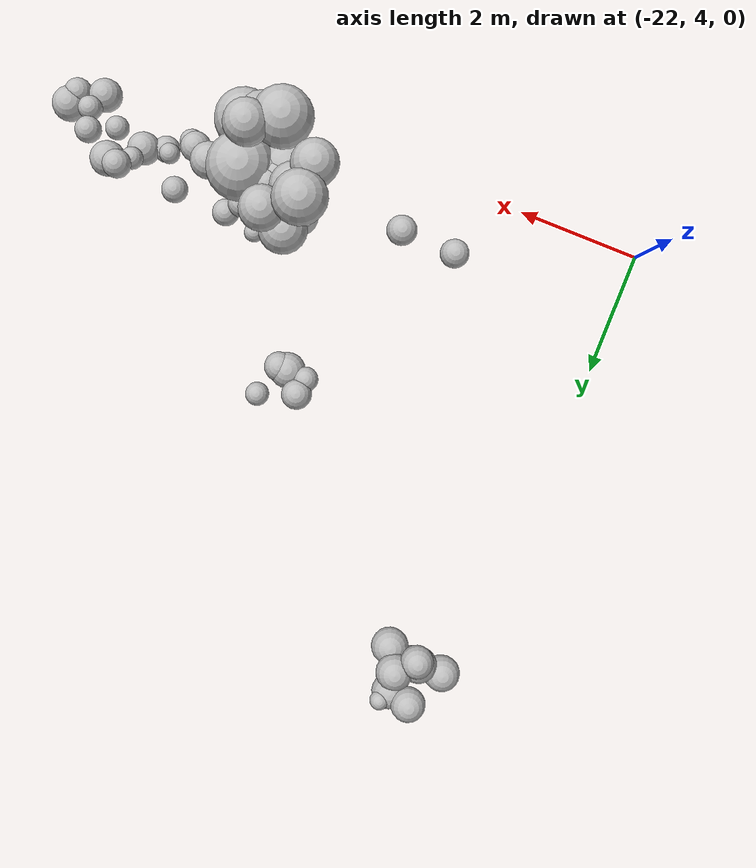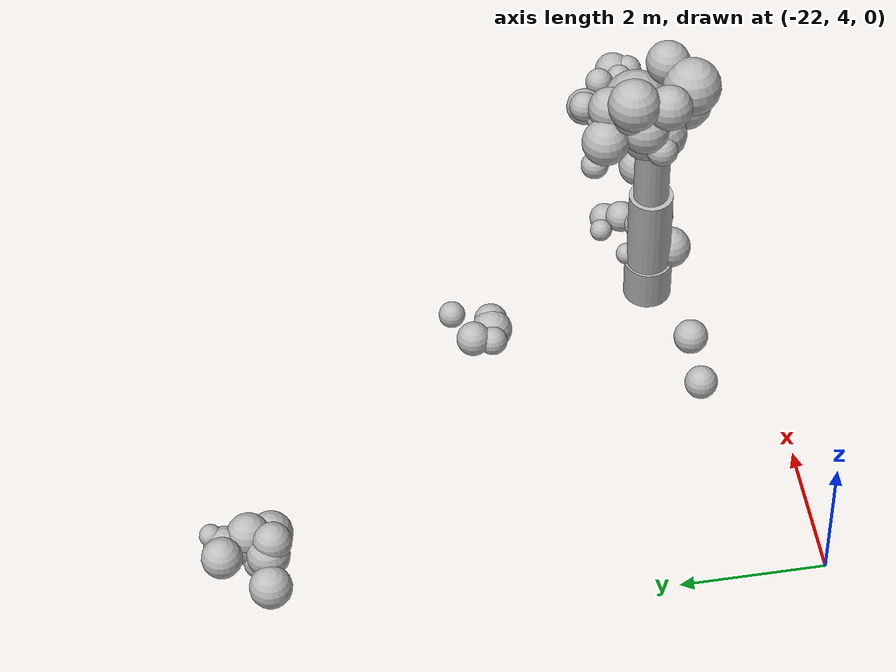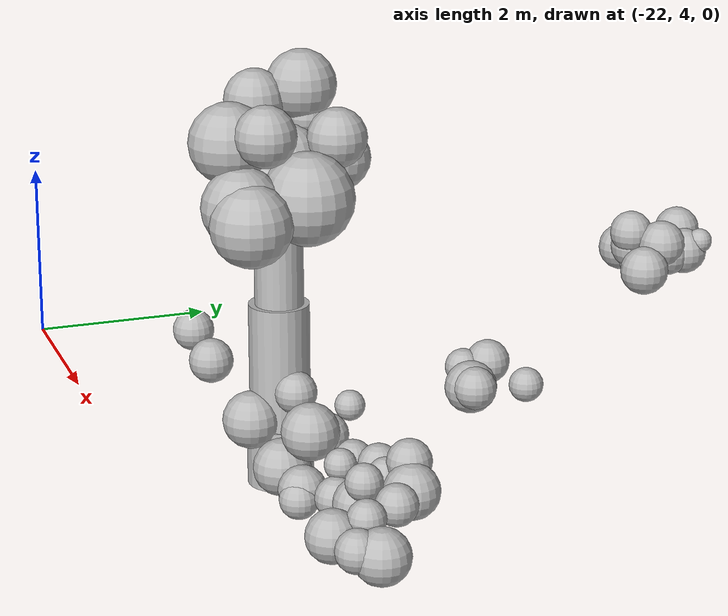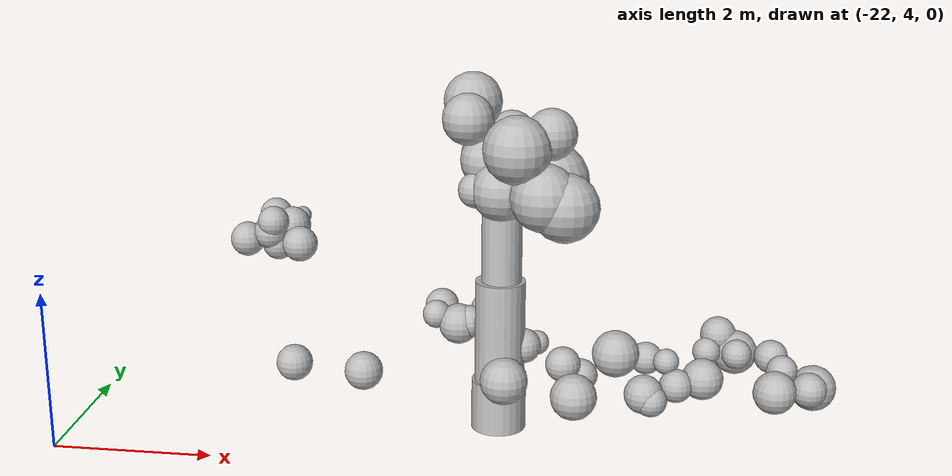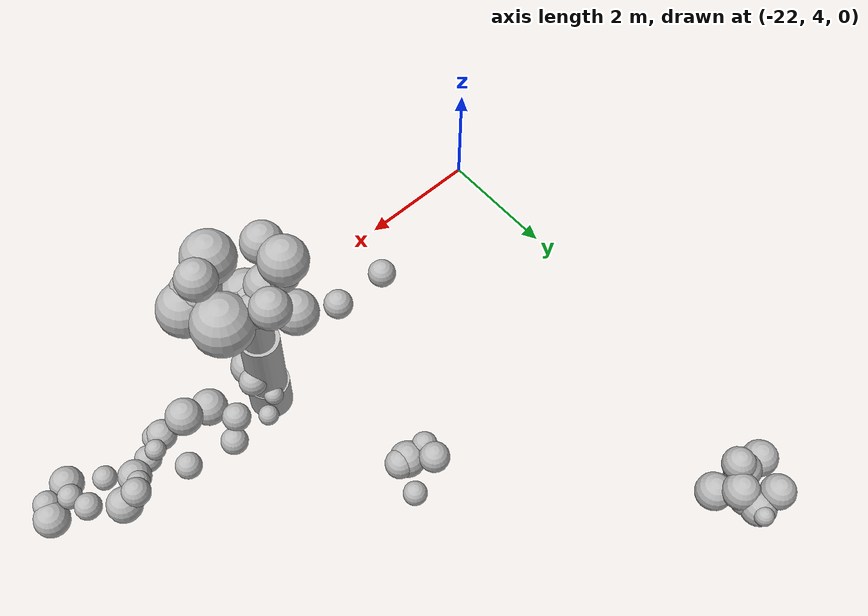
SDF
<sdf version="1.6">
 <world name="default">
  <model name="bush_27">
   <static>true</static>
   <pose>-16.6134 5.4047 0 0 0 0</pose>
   <link name="trunk">
    <pose>0 0 1.5000 0 0 0</pose>
    <collision name="trunk_c">
     <geometry><cylinder><radius>0.3500</radius><length>3.0000</length></cylinder></geometry>
    </collision>
   </link>
   <link name="trunk_v0">
    <pose>0.0010 0.0001 0.3100 0 0 0</pose>
    <visual name="trunk_v0_v">
     <geometry><cylinder><radius>0.3448</radius><length>0.6448</length></cylinder></geometry>
     <material>
      <script>
       <uri>model://bushfire/materials/scripts</uri>
       <uri>model://bushfire/materials/textures</uri>
       <name>Bushfire/CharBark</name>
      </script>
     </material>
    </visual>
   </link>
   <link name="trunk_v1">
    <pose>0.0076 0.0010 1.2700 0 0 0</pose>
    <visual name="trunk_v1_v">
     <geometry><cylinder><radius>0.3150</radius><length>1.3520</length></cylinder></geometry>
     <material>
      <script>
       <uri>model://bushfire/materials/scripts</uri>
       <uri>model://bushfire/materials/textures</uri>
       <name>Bushfire/BarkSmooth</name>
      </script>
     </material>
    </visual>
   </link>
   <link name="trunk_v2">
    <pose>0.0191 0.0025 2.4600 0 0 0</pose>
    <visual name="trunk_v2_v">
     <geometry><cylinder><radius>0.2520</radius><length>1.1232</length></cylinder></geometry>
     <material>
      <script>
       <uri>model://bushfire/materials/scripts</uri>
       <uri>model://bushfire/materials/textures</uri>
       <name>Bushfire/BarkSmooth</name>
      </script>
     </material>
    </visual>
   </link>
   <link name="branch0">
    <pose>0.2997 -0.1736 2.9202 0 1.0061 5.7580</pose>
    <visual name="branch0_v">
     <geometry><cylinder><radius>0.0526</radius><length>0.8201</length></cylinder></geometry>
     <material>
      <script>
       <uri>model://bushfire/materials/scripts</uri>
       <uri>model://bushfire/materials/textures</uri>
       <name>Bushfire/BarkSmooth</name>
      </script>
     </material>
    </visual>
   </link>
   <link name="branch1">
    <pose>-0.0403 0.2924 2.8859 0 0.7492 7.9910</pose>
    <visual name="branch1_v">
     <geometry><cylinder><radius>0.0457</radius><length>0.8670</length></cylinder></geometry>
     <material>
      <script>
       <uri>model://bushfire/materials/scripts</uri>
       <uri>model://bushfire/materials/textures</uri>
       <name>Bushfire/BarkSmooth</name>
      </script>
     </material>
    </visual>
   </link>
   <link name="branch2">
    <pose>-0.1545 -0.0808 2.9301 0 0.6088 9.9064</pose>
    <visual name="branch2_v">
     <geometry><cylinder><radius>0.0494</radius><length>0.6097</length></cylinder></geometry>
     <material>
      <script>
       <uri>model://bushfire/materials/scripts</uri>
       <uri>model://bushfire/materials/textures</uri>
       <name>Bushfire/BarkSmooth</name>
      </script>
     </material>
    </visual>
   </link>
   <link name="foliage0">
    <pose>0.2344 -0.5534 3.7459 0 0 0</pose>
    <visual name="foliage0_v">
     <geometry><sphere><radius>0.4104</radius></sphere></geometry>
     <material>
      <script>
       <uri>model://bushfire/materials/scripts</uri>
       <uri>model://bushfire/materials/textures</uri>
       <name>Bushfire/Foliage1</name>
      </script>
     </material>
    </visual>
   </link>
   <link name="foliage1">
    <pose>-0.3922 0.3838 4.1151 0 0 0</pose>
    <visual name="foliage1_v">
     <geometry><sphere><radius>0.3647</radius></sphere></geometry>
     <material>
      <script>
       <uri>model://bushfire/materials/scripts</uri>
       <uri>model://bushfire/materials/textures</uri>
       <name>Bushfire/Foliage1</name>
      </script>
     </material>
    </visual>
   </link>
   <link name="foliage2">
    <pose>0.1636 0.2439 3.3120 0 0 0</pose>
    <visual name="foliage2_v">
     <geometry><sphere><radius>0.2139</radius></sphere></geometry>
     <material>
      <script>
       <uri>model://bushfire/materials/scripts</uri>
       <uri>model://bushfire/materials/textures</uri>
       <name>Bushfire/Foliage0</name>
      </script>
     </material>
    </visual>
   </link>
   <link name="foliage3">
    <pose>0.5948 0.1442 3.2076 0 0 0</pose>
    <visual name="foliage3_v">
     <geometry><sphere><radius>0.4738</radius></sphere></geometry>
     <material>
      <script>
       <uri>model://bushfire/materials/scripts</uri>
       <uri>model://bushfire/materials/textures</uri>
       <name>Bushfire/Foliage2</name>
      </script>
     </material>
    </visual>
   </link>
   <link name="foliage4">
    <pose>-0.3012 -0.0554 3.1097 0 0 0</pose>
    <visual name="foliage4_v">
     <geometry><sphere><radius>0.2202</radius></sphere></geometry>
     <material>
      <script>
       <uri>model://bushfire/materials/scripts</uri>
       <uri>model://bushfire/materials/textures</uri>
       <name>Bushfire/Foliage1</name>
      </script>
     </material>
    </visual>
   </link>
   <link name="foliage5">
    <pose>0.0450 0.0968 3.1209 0 0 0</pose>
    <visual name="foliage5_v">
     <geometry><sphere><radius>0.3744</radius></sphere></geometry>
     <material>
      <script>
       <uri>model://bushfire/materials/scripts</uri>
       <uri>model://bushfire/materials/textures</uri>
       <name>Bushfire/Foliage0</name>
      </script>
     </material>
    </visual>
   </link>
   <link name="foliage6">
    <pose>0.2183 0.0664 3.1596 0 0 0</pose>
    <visual name="foliage6_v">
     <geometry><sphere><radius>0.2964</radius></sphere></geometry>
     <material>
      <script>
       <uri>model://bushfire/materials/scripts</uri>
       <uri>model://bushfire/materials/textures</uri>
       <name>Bushfire/Foliage1</name>
      </script>
     </material>
    </visual>
   </link>
   <link name="foliage7">
    <pose>-0.3342 0.4283 3.7980 0 0 0</pose>
    <visual name="foliage7_v">
     <geometry><sphere><radius>0.2134</radius></sphere></geometry>
     <material>
      <script>
       <uri>model://bushfire/materials/scripts</uri>
       <uri>model://bushfire/materials/textures</uri>
       <name>Bushfire/Foliage1</name>
      </script>
     </material>
    </visual>
   </link>
   <link name="foliage8">
    <pose>-0.3958 -0.1070 3.9991 0 0 0</pose>
    <visual name="foliage8_v">
     <geometry><sphere><radius>0.3160</radius></sphere></geometry>
     <material>
      <script>
       <uri>model://bushfire/materials/scripts</uri>
       <uri>model://bushfire/materials/textures</uri>
       <name>Bushfire/Foliage2</name>
      </script>
     </material>
    </visual>
   </link>
   <link name="foliage9">
    <pose>0.8082 -0.5005 3.0530 0 0 0</pose>
    <visual name="foliage9_v">
     <geometry><sphere><radius>0.4182</radius></sphere></geometry>
     <material>
      <script>
       <uri>model://bushfire/materials/scripts</uri>
       <uri>model://bushfire/materials/textures</uri>
       <name>Bushfire/Foliage0</name>
      </script>
     </material>
    </visual>
   </link>
   <link name="foliage10">
    <pose>-0.2553 0.7382 3.3472 0 0 0</pose>
    <visual name="foliage10_v">
     <geometry><sphere><radius>0.3303</radius></sphere></geometry>
     <material>
      <script>
       <uri>model://bushfire/materials/scripts</uri>
       <uri>model://bushfire/materials/textures</uri>
       <name>Bushfire/Foliage2</name>
      </script>
     </material>
    </visual>
   </link>
   <link name="foliage11">
    <pose>-0.1882 0.1735 3.4304 0 0 0</pose>
    <visual name="foliage11_v">
     <geometry><sphere><radius>0.3364</radius></sphere></geometry>
     <material>
      <script>
       <uri>model://bushfire/materials/scripts</uri>
       <uri>model://bushfire/materials/textures</uri>
       <name>Bushfire/Foliage2</name>
      </script>
     </material>
    </visual>
   </link>
   <link name="foliage12">
    <pose>0.6172 -0.2883 3.8853 0 0 0</pose>
    <visual name="foliage12_v">
     <geometry><sphere><radius>0.3113</radius></sphere></geometry>
     <material>
      <script>
       <uri>model://bushfire/materials/scripts</uri>
       <uri>model://bushfire/materials/textures</uri>
       <name>Bushfire/Foliage0</name>
      </script>
     </material>
    </visual>
   </link>
   <link name="foliage13">
    <pose>0.0685 0.6189 3.6547 0 0 0</pose>
    <visual name="foliage13_v">
     <geometry><sphere><radius>0.3093</radius></sphere></geometry>
     <material>
      <script>
       <uri>model://bushfire/materials/scripts</uri>
       <uri>model://bushfire/materials/textures</uri>
       <name>Bushfire/Foliage2</name>
      </script>
     </material>
    </visual>
   </link>
   <link name="foliage14">
    <pose>0.0154 -0.0832 3.1212 0 0 0</pose>
    <visual name="foliage14_v">
     <geometry><sphere><radius>0.3785</radius></sphere></geometry>
     <material>
      <script>
       <uri>model://bushfire/materials/scripts</uri>
       <uri>model://bushfire/materials/textures</uri>
       <name>Bushfire/Foliage0</name>
      </script>
     </material>
    </visual>
   </link>
   <link name="foliage15">
    <pose>0.5634 -0.5236 3.1696 0 0 0</pose>
    <visual name="foliage15_v">
     <geometry><sphere><radius>0.4115</radius></sphere></geometry>
     <material>
      <script>
       <uri>model://bushfire/materials/scripts</uri>
       <uri>model://bushfire/materials/textures</uri>
       <name>Bushfire/Foliage1</name>
      </script>
     </material>
    </visual>
   </link>
  </model>
  <model name="scrub">
   <static>true</static>
   <link name="scrub10_0">
    <pose>-21.0254 11.3139 0.7875 0 0 0</pose>
    <visual name="scrub10_0_v">
     <geometry><sphere><radius>0.2636</radius></sphere></geometry>
     <material>
      <script>
       <uri>model://bushfire/materials/scripts</uri>
       <uri>model://bushfire/materials/textures</uri>
       <name>Bushfire/Foliage0</name>
      </script>
     </material>
    </visual>
   </link>
   <link name="scrub10_1">
    <pose>-20.8965 11.6161 0.5392 0 0 0</pose>
    <visual name="scrub10_1_v">
     <geometry><sphere><radius>0.1469</radius></sphere></geometry>
     <material>
      <script>
       <uri>model://bushfire/materials/scripts</uri>
       <uri>model://bushfire/materials/textures</uri>
       <name>Bushfire/Foliage2</name>
      </script>
     </material>
    </visual>
   </link>
   <link name="scrub10_2">
    <pose>-21.5065 11.4048 0.4421 0 0 0</pose>
    <visual name="scrub10_2_v">
     <geometry><sphere><radius>0.2904</radius></sphere></geometry>
     <material>
      <script>
       <uri>model://bushfire/materials/scripts</uri>
       <uri>model://bushfire/materials/textures</uri>
       <name>Bushfire/Foliage1</name>
      </script>
     </material>
    </visual>
   </link>
   <link name="scrub10_3">
    <pose>-20.9817 11.4541 0.3681 0 0 0</pose>
    <visual name="scrub10_3_v">
     <geometry><sphere><radius>0.2757</radius></sphere></geometry>
     <material>
      <script>
       <uri>model://bushfire/materials/scripts</uri>
       <uri>model://bushfire/materials/textures</uri>
       <name>Bushfire/Foliage0</name>
      </script>
     </material>
    </visual>
   </link>
   <link name="scrub10_4">
    <pose>-20.5779 11.3073 0.4181 0 0 0</pose>
    <visual name="scrub10_4_v">
     <geometry><sphere><radius>0.2984</radius></sphere></geometry>
     <material>
      <script>
       <uri>model://bushfire/materials/scripts</uri>
       <uri>model://bushfire/materials/textures</uri>
       <name>Bushfire/Foliage0</name>
      </script>
     </material>
    </visual>
   </link>
   <link name="scrub10_5">
    <pose>-20.7660 11.6158 0.6737 0 0 0</pose>
    <visual name="scrub10_5_v">
     <geometry><sphere><radius>0.2938</radius></sphere></geometry>
     <material>
      <script>
       <uri>model://bushfire/materials/scripts</uri>
       <uri>model://bushfire/materials/textures</uri>
       <name>Bushfire/Foliage1</name>
      </script>
     </material>
    </visual>
   </link>
   <link name="scrub25_0">
    <pose>-14.3948 5.3047 0.7021 0 0 0</pose>
    <visual name="scrub25_0_v">
     <geometry><sphere><radius>0.2109</radius></sphere></geometry>
     <material>
      <script>
       <uri>model://bushfire/materials/scripts</uri>
       <uri>model://bushfire/materials/textures</uri>
       <name>Bushfire/Foliage1</name>
      </script>
     </material>
    </visual>
   </link>
   <link name="scrub25_1">
    <pose>-14.7719 5.8626 0.8306 0 0 0</pose>
    <visual name="scrub25_1_v">
     <geometry><sphere><radius>0.2074</radius></sphere></geometry>
     <material>
      <script>
       <uri>model://bushfire/materials/scripts</uri>
       <uri>model://bushfire/materials/textures</uri>
       <name>Bushfire/Foliage0</name>
      </script>
     </material>
    </visual>
   </link>
   <link name="scrub25_2">
    <pose>-14.6977 5.0256 0.6000 0 0 0</pose>
    <visual name="scrub25_2_v">
     <geometry><sphere><radius>0.1983</radius></sphere></geometry>
     <material>
      <script>
       <uri>model://bushfire/materials/scripts</uri>
       <uri>model://bushfire/materials/textures</uri>
       <name>Bushfire/Foliage0</name>
      </script>
     </material>
    </visual>
   </link>
   <link name="scrub25_3">
    <pose>-14.7897 5.0884 0.6578 0 0 0</pose>
    <visual name="scrub25_3_v">
     <geometry><sphere><radius>0.2430</radius></sphere></geometry>
     <material>
      <script>
       <uri>model://bushfire/materials/scripts</uri>
       <uri>model://bushfire/materials/textures</uri>
       <name>Bushfire/Foliage1</name>
      </script>
     </material>
    </visual>
   </link>
   <link name="scrub25_4">
    <pose>-14.5268 5.3922 0.9824 0 0 0</pose>
    <visual name="scrub25_4_v">
     <geometry><sphere><radius>0.1609</radius></sphere></geometry>
     <material>
      <script>
       <uri>model://bushfire/materials/scripts</uri>
       <uri>model://bushfire/materials/textures</uri>
       <name>Bushfire/Foliage1</name>
      </script>
     </material>
    </visual>
   </link>
   <link name="scrub25_5">
    <pose>-15.1534 5.2850 1.0972 0 0 0</pose>
    <visual name="scrub25_5_v">
     <geometry><sphere><radius>0.2918</radius></sphere></geometry>
     <material>
      <script>
       <uri>model://bushfire/materials/scripts</uri>
       <uri>model://bushfire/materials/textures</uri>
       <name>Bushfire/Foliage2</name>
      </script>
     </material>
    </visual>
   </link>
   <link name="scrub28_0">
    <pose>-17.7098 8.1258 0.6021 0 0 0</pose>
    <visual name="scrub28_0_v">
     <geometry><sphere><radius>0.2428</radius></sphere></geometry>
     <material>
      <script>
       <uri>model://bushfire/materials/scripts</uri>
       <uri>model://bushfire/materials/textures</uri>
       <name>Bushfire/Foliage1</name>
      </script>
     </material>
    </visual>
   </link>
   <link name="scrub28_1">
    <pose>-17.7528 7.8532 0.5572 0 0 0</pose>
    <visual name="scrub28_1_v">
     <geometry><sphere><radius>0.2019</radius></sphere></geometry>
     <material>
      <script>
       <uri>model://bushfire/materials/scripts</uri>
       <uri>model://bushfire/materials/textures</uri>
       <name>Bushfire/Foliage1</name>
      </script>
     </material>
    </visual>
   </link>
   <link name="scrub28_2">
    <pose>-17.2810 7.8170 0.4755 0 0 0</pose>
    <visual name="scrub28_2_v">
     <geometry><sphere><radius>0.2380</radius></sphere></geometry>
     <material>
      <script>
       <uri>model://bushfire/materials/scripts</uri>
       <uri>model://bushfire/materials/textures</uri>
       <name>Bushfire/Foliage1</name>
      </script>
     </material>
    </visual>
   </link>
   <link name="scrub28_3">
    <pose>-17.1202 8.3508 0.5103 0 0 0</pose>
    <visual name="scrub28_3_v">
     <geometry><sphere><radius>0.1896</radius></sphere></geometry>
     <material>
      <script>
       <uri>model://bushfire/materials/scripts</uri>
       <uri>model://bushfire/materials/textures</uri>
       <name>Bushfire/Foliage1</name>
      </script>
     </material>
    </visual>
   </link>
   <link name="scrub28_4">
    <pose>-17.4272 7.8235 0.4374 0 0 0</pose>
    <visual name="scrub28_4_v">
     <geometry><sphere><radius>0.2891</radius></sphere></geometry>
     <material>
      <script>
       <uri>model://bushfire/materials/scripts</uri>
       <uri>model://bushfire/materials/textures</uri>
       <name>Bushfire/Foliage0</name>
      </script>
     </material>
    </visual>
   </link>
   <link name="scrub39_0">
    <pose>-13.6713 5.8209 0.9915 0 0 0</pose>
    <visual name="scrub39_0_v">
     <geometry><sphere><radius>0.2768</radius></sphere></geometry>
     <material>
      <script>
       <uri>model://bushfire/materials/scripts</uri>
       <uri>model://bushfire/materials/textures</uri>
       <name>Bushfire/Foliage2</name>
      </script>
     </material>
    </visual>
   </link>
   <link name="scrub39_1">
    <pose>-14.0265 5.6819 1.0358 0 0 0</pose>
    <visual name="scrub39_1_v">
     <geometry><sphere><radius>0.1744</radius></sphere></geometry>
     <material>
      <script>
       <uri>model://bushfire/materials/scripts</uri>
       <uri>model://bushfire/materials/textures</uri>
       <name>Bushfire/Foliage2</name>
      </script>
     </material>
    </visual>
   </link>
   <link name="scrub39_2">
    <pose>-13.1386 5.1978 1.0191 0 0 0</pose>
    <visual name="scrub39_2_v">
     <geometry><sphere><radius>0.1881</radius></sphere></geometry>
     <material>
      <script>
       <uri>model://bushfire/materials/scripts</uri>
       <uri>model://bushfire/materials/textures</uri>
       <name>Bushfire/Foliage0</name>
      </script>
     </material>
    </visual>
   </link>
   <link name="scrub39_3">
    <pose>-14.0703 5.4338 0.7580 0 0 0</pose>
    <visual name="scrub39_3_v">
     <geometry><sphere><radius>0.2595</radius></sphere></geometry>
     <material>
      <script>
       <uri>model://bushfire/materials/scripts</uri>
       <uri>model://bushfire/materials/textures</uri>
       <name>Bushfire/Foliage0</name>
      </script>
     </material>
    </visual>
   </link>
   <link name="scrub39_4">
    <pose>-13.6793 5.3521 1.1421 0 0 0</pose>
    <visual name="scrub39_4_v">
     <geometry><sphere><radius>0.1831</radius></sphere></geometry>
     <material>
      <script>
       <uri>model://bushfire/materials/scripts</uri>
       <uri>model://bushfire/materials/textures</uri>
       <name>Bushfire/Foliage0</name>
      </script>
     </material>
    </visual>
   </link>
   <link name="scrub39_5">
    <pose>-13.2484 5.5270 1.0669 0 0 0</pose>
    <visual name="scrub39_5_v">
     <geometry><sphere><radius>0.2059</radius></sphere></geometry>
     <material>
      <script>
       <uri>model://bushfire/materials/scripts</uri>
       <uri>model://bushfire/materials/textures</uri>
       <name>Bushfire/Foliage2</name>
      </script>
     </material>
    </visual>
   </link>
   <link name="scrub39_6">
    <pose>-13.8863 5.8705 1.2025 0 0 0</pose>
    <visual name="scrub39_6_v">
     <geometry><sphere><radius>0.2220</radius></sphere></geometry>
     <material>
      <script>
       <uri>model://bushfire/materials/scripts</uri>
       <uri>model://bushfire/materials/textures</uri>
       <name>Bushfire/Foliage0</name>
      </script>
     </material>
    </visual>
   </link>
   <link name="scrub55_1">
    <pose>-18.2970 5.1256 0.7617 0 0 0</pose>
    <visual name="scrub55_1_v">
     <geometry><sphere><radius>0.2431</radius></sphere></geometry>
     <material>
      <script>
       <uri>model://bushfire/materials/scripts</uri>
       <uri>model://bushfire/materials/textures</uri>
       <name>Bushfire/Foliage1</name>
      </script>
     </material>
    </visual>
   </link>
   <link name="scrub55_4">
    <pose>-19.1967 5.1656 0.8088 0 0 0</pose>
    <visual name="scrub55_4_v">
     <geometry><sphere><radius>0.2310</radius></sphere></geometry>
     <material>
      <script>
       <uri>model://bushfire/materials/scripts</uri>
       <uri>model://bushfire/materials/textures</uri>
       <name>Bushfire/Foliage1</name>
      </script>
     </material>
    </visual>
   </link>
   <link name="scrub56_1">
    <pose>-13.2350 4.9004 0.8484 0 0 0</pose>
    <visual name="scrub56_1_v">
     <geometry><sphere><radius>0.2603</radius></sphere></geometry>
     <material>
      <script>
       <uri>model://bushfire/materials/scripts</uri>
       <uri>model://bushfire/materials/textures</uri>
       <name>Bushfire/Foliage0</name>
      </script>
     </material>
    </visual>
   </link>
   <link name="scrub56_2">
    <pose>-12.7531 5.2165 0.8056 0 0 0</pose>
    <visual name="scrub56_2_v">
     <geometry><sphere><radius>0.2774</radius></sphere></geometry>
     <material>
      <script>
       <uri>model://bushfire/materials/scripts</uri>
       <uri>model://bushfire/materials/textures</uri>
       <name>Bushfire/Foliage2</name>
      </script>
     </material>
    </visual>
   </link>
   <link name="scrub56_8">
    <pose>-12.8218 5.0060 0.8603 0 0 0</pose>
    <visual name="scrub56_8_v">
     <geometry><sphere><radius>0.2134</radius></sphere></geometry>
     <material>
      <script>
       <uri>model://bushfire/materials/scripts</uri>
       <uri>model://bushfire/materials/textures</uri>
       <name>Bushfire/Foliage0</name>
      </script>
     </material>
    </visual>
   </link>
   <link name="scrub74_0">
    <pose>-15.6514 5.1367 0.5490 0 0 0</pose>
    <visual name="scrub74_0_v">
     <geometry><sphere><radius>0.2936</radius></sphere></geometry>
     <material>
      <script>
       <uri>model://bushfire/materials/scripts</uri>
       <uri>model://bushfire/materials/textures</uri>
       <name>Bushfire/Foliage2</name>
      </script>
     </material>
    </visual>
   </link>
   <link name="scrub74_1">
    <pose>-15.5938 5.8622 0.5465 0 0 0</pose>
    <visual name="scrub74_1_v">
     <geometry><sphere><radius>0.2167</radius></sphere></geometry>
     <material>
      <script>
       <uri>model://bushfire/materials/scripts</uri>
       <uri>model://bushfire/materials/textures</uri>
       <name>Bushfire/Foliage2</name>
      </script>
     </material>
    </visual>
   </link>
   <link name="scrub74_2">
    <pose>-16.3126 5.4883 1.0647 0 0 0</pose>
    <visual name="scrub74_2_v">
     <geometry><sphere><radius>0.2217</radius></sphere></geometry>
     <material>
      <script>
       <uri>model://bushfire/materials/scripts</uri>
       <uri>model://bushfire/materials/textures</uri>
       <name>Bushfire/Foliage1</name>
      </script>
     </material>
    </visual>
   </link>
   <link name="scrub74_3">
    <pose>-16.5174 5.0698 0.7436 0 0 0</pose>
    <visual name="scrub74_3_v">
     <geometry><sphere><radius>0.2994</radius></sphere></geometry>
     <material>
      <script>
       <uri>model://bushfire/materials/scripts</uri>
       <uri>model://bushfire/materials/textures</uri>
       <name>Bushfire/Foliage1</name>
      </script>
     </material>
    </visual>
   </link>
   <link name="scrub74_4">
    <pose>-15.8184 5.6616 0.7682 0 0 0</pose>
    <visual name="scrub74_4_v">
     <geometry><sphere><radius>0.2260</radius></sphere></geometry>
     <material>
      <script>
       <uri>model://bushfire/materials/scripts</uri>
       <uri>model://bushfire/materials/textures</uri>
       <name>Bushfire/Foliage0</name>
      </script>
     </material>
    </visual>
   </link>
   <link name="scrub74_5">
    <pose>-16.5057 5.7053 0.6980 0 0 0</pose>
    <visual name="scrub74_5_v">
     <geometry><sphere><radius>0.1554</radius></sphere></geometry>
     <material>
      <script>
       <uri>model://bushfire/materials/scripts</uri>
       <uri>model://bushfire/materials/textures</uri>
       <name>Bushfire/Foliage2</name>
      </script>
     </material>
    </visual>
   </link>
   <link name="scrub74_6">
    <pose>-16.1797 6.0259 0.9058 0 0 0</pose>
    <visual name="scrub74_6_v">
     <geometry><sphere><radius>0.1585</radius></sphere></geometry>
     <material>
      <script>
       <uri>model://bushfire/materials/scripts</uri>
       <uri>model://bushfire/materials/textures</uri>
       <name>Bushfire/Foliage1</name>
      </script>
     </material>
    </visual>
   </link>
   <link name="scrub79_0">
    <pose>-20.7108 12.1116 0.6833 0 0 0</pose>
    <visual name="scrub79_0_v">
     <geometry><sphere><radius>0.1544</radius></sphere></geometry>
     <material>
      <script>
       <uri>model://bushfire/materials/scripts</uri>
       <uri>model://bushfire/materials/textures</uri>
       <name>Bushfire/Foliage0</name>
      </script>
     </material>
    </visual>
   </link>
   <link name="scrub79_1">
    <pose>-21.0891 11.3868 0.5882 0 0 0</pose>
    <visual name="scrub79_1_v">
     <geometry><sphere><radius>0.2933</radius></sphere></geometry>
     <material>
      <script>
       <uri>model://bushfire/materials/scripts</uri>
       <uri>model://bushfire/materials/textures</uri>
       <name>Bushfire/Foliage0</name>
      </script>
     </material>
    </visual>
   </link>
   <link name="scrub79_2">
    <pose>-20.8203 11.9516 0.5386 0 0 0</pose>
    <visual name="scrub79_2_v">
     <geometry><sphere><radius>0.2828</radius></sphere></geometry>
     <material>
      <script>
       <uri>model://bushfire/materials/scripts</uri>
       <uri>model://bushfire/materials/textures</uri>
       <name>Bushfire/Foliage1</name>
      </script>
     </material>
    </visual>
   </link>
   <link name="scrub79_3">
    <pose>-20.8036 11.7270 0.5319 0 0 0</pose>
    <visual name="scrub79_3_v">
     <geometry><sphere><radius>0.2681</radius></sphere></geometry>
     <material>
      <script>
       <uri>model://bushfire/materials/scripts</uri>
       <uri>model://bushfire/materials/textures</uri>
       <name>Bushfire/Foliage1</name>
      </script>
     </material>
    </visual>
   </link>
   <link name="scrub79_4">
    <pose>-21.1464 11.9975 0.7284 0 0 0</pose>
    <visual name="scrub79_4_v">
     <geometry><sphere><radius>0.2772</radius></sphere></geometry>
     <material>
      <script>
       <uri>model://bushfire/materials/scripts</uri>
       <uri>model://bushfire/materials/textures</uri>
       <name>Bushfire/Foliage2</name>
      </script>
     </material>
    </visual>
   </link>
  </model>
 </world>
</sdf>
